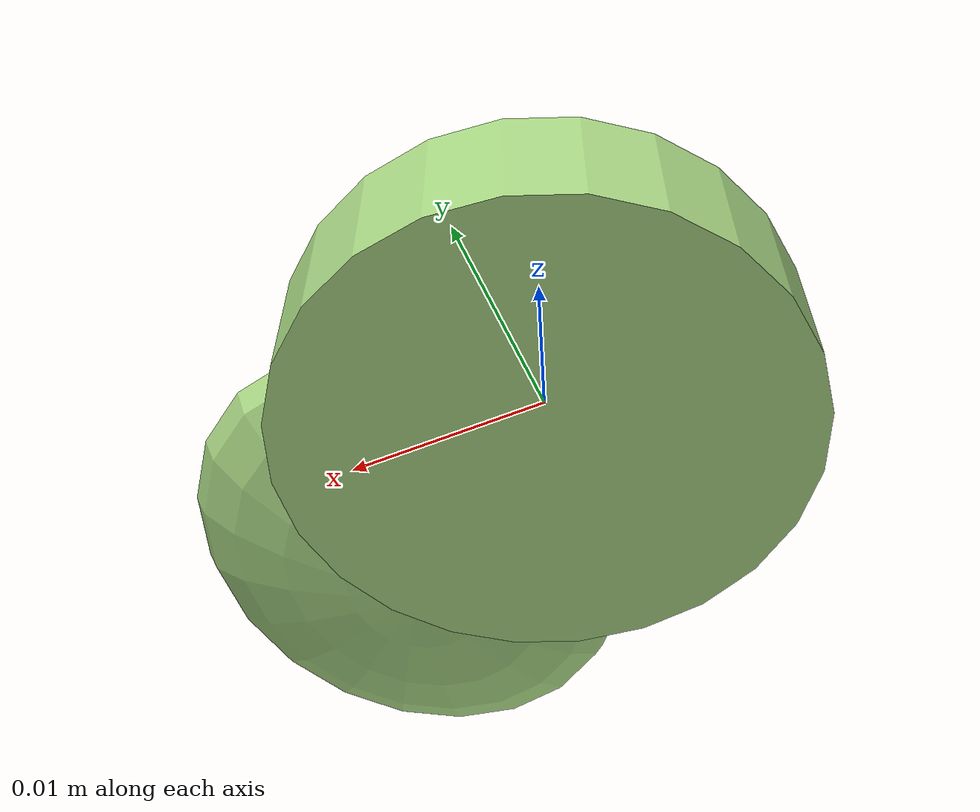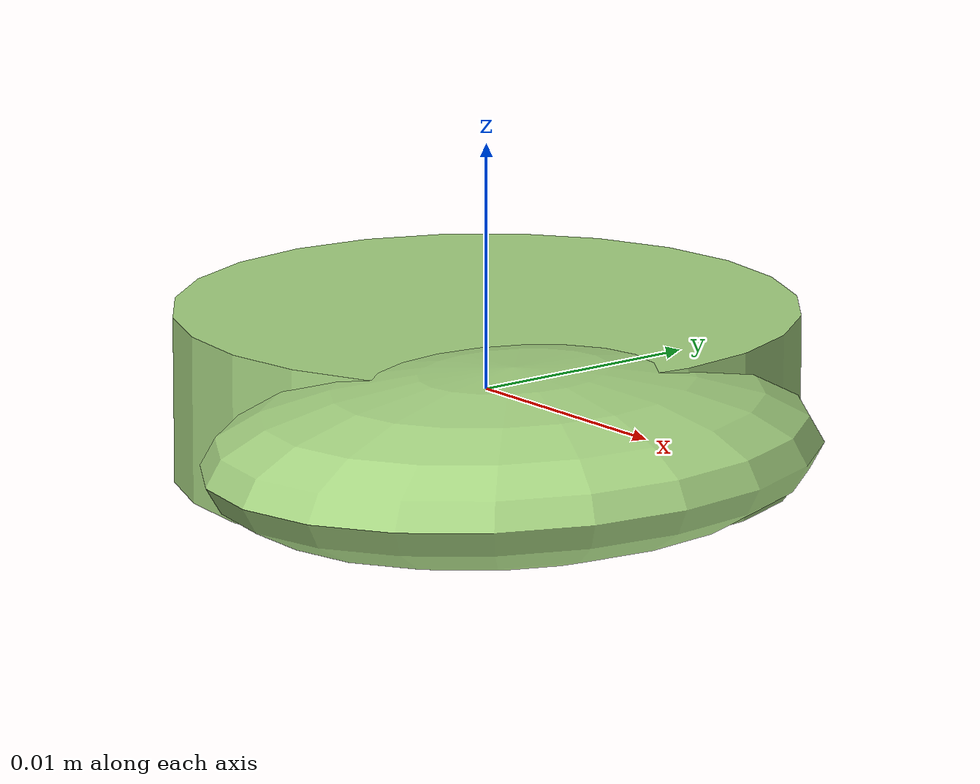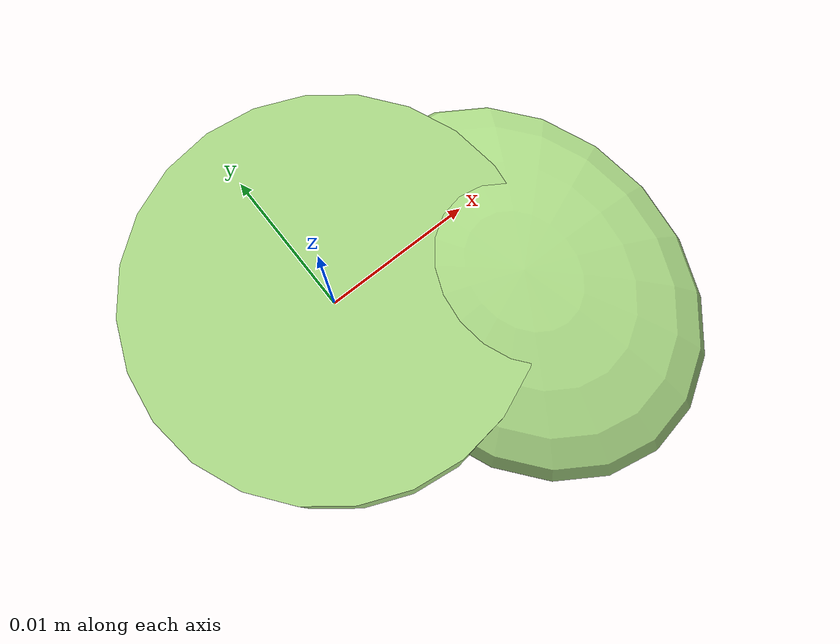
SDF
<?xml version="1.0" ?>
<!-- |    This document was autogenerated by xmacro from data/veggie_template/veggie_base.sdf.xacro  | -->
<!-- |    EDITING THIS FILE BY HAND IS NOT RECOMMENDED                                               | -->
<sdf version="1.8">
	<!-- Parameters -->
	<!-- Base -->
	<!-- Joint 0 -->
	<!-- Link 1 -->
	<!-- Joint 1 -->
	<!-- Link 2 -->
	<!-- Primitives -->
	<!-- All dimensions are half -->
	<!-- Object -->
	<model name="veggie">
		<!-- link0 -->
		<link name="link0">
			<inertial>
				<mass>0.003335192958600707</mass>
				<inertia>
					<ixx>1.437630565263998e-07</ixx>
					<ixy>0</ixy>
					<ixz>0</ixz>
					<iyy>1.437630565263998e-07</iyy>
					<iyz>0</iyz>
					<izz>2.6218135131997465e-07</izz>
				</inertia>
			</inertial>
			<visual name="link0_visual">
				<pose>0 0 0 0 0 0</pose>
				<geometry>
					<cylinder>
						<radius>0.012538783796423529</radius>
						<length>0.006752416912485406</length>
					</cylinder>
				</geometry>
				<material>
					<ambient>0.659 0.839 0.514 1</ambient>
					<diffuse>0.659 0.839 0.514 1</diffuse>
					<specular>0 0 0 0</specular>
					<emissive>0 0 0 1</emissive>
				</material>
			</visual>
			<collision name="link0_collision">
				<pose>0 0 0 0 0 0 </pose>
				<geometry>
					<cylinder>
						<radius>0.012538783796423529</radius>
						<length>0.006752416912485406</length>
					</cylinder>
				</geometry>
			</collision>
		</link>
		<!-- link1 -->
		<joint name="joint0" type="fixed">
			<pose relative_to="link0">0.009609832079538283 -0.006244750471623488 0.0004050757790645115 0.0 0.0 0.0</pose>
			<parent>link0</parent>
			<child>link1</child>
		</joint>
		<link name="link1">
			<pose relative_to="joint0">0 0 0 0 0 0</pose>
			<inertial>
				<mass>0.0019145698000058182</mass>
				<inertia>
					<ixx>6.843144090742099e-08</ixx>
					<ixy>0</ixy>
					<ixz>0</ixz>
					<iyy>4.565173975311787e-08</iyy>
					<iyz>0</iyz>
					<izz>1.0518474588952438e-07</izz>
				</inertia>
			</inertial>
			<visual name="link1_visual">
				<pose>0 0 0 0 0 0</pose>
				<geometry>
					<ellipsoid>
						<radii>0.010373165381438785 0.012926443861781572 0.0034087190904232775</radii>
					</ellipsoid>
				</geometry>
				<material>
					<ambient>0.659 0.839 0.514 1</ambient>
					<diffuse>0.659 0.839 0.514 1</diffuse>
					<specular>0 0 0 0</specular>
					<emissive>0 0 0 1</emissive>
				</material>
			</visual>
			<collision name="link1_collision">
				<pose>0 0 0 0 0 0 </pose>
				<geometry>
					<ellipsoid>
						<radii>0.010373165381438785 0.012926443861781572 0.0034087190904232775</radii>
					</ellipsoid>
				</geometry>
			</collision>
		</link>
		<!-- link2 -->
	</model>
</sdf>
